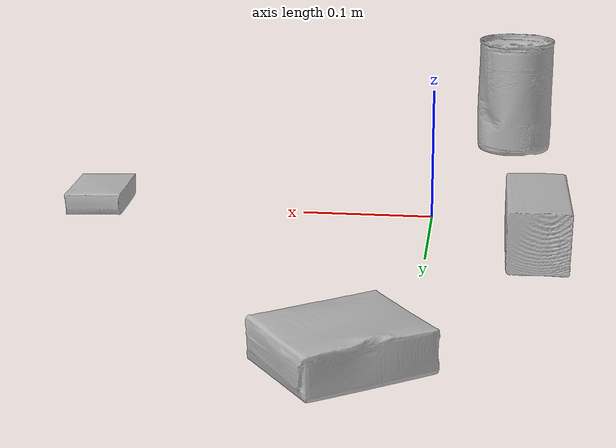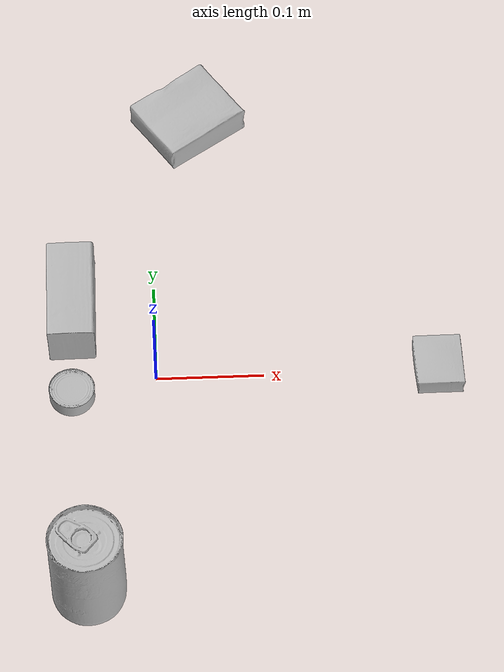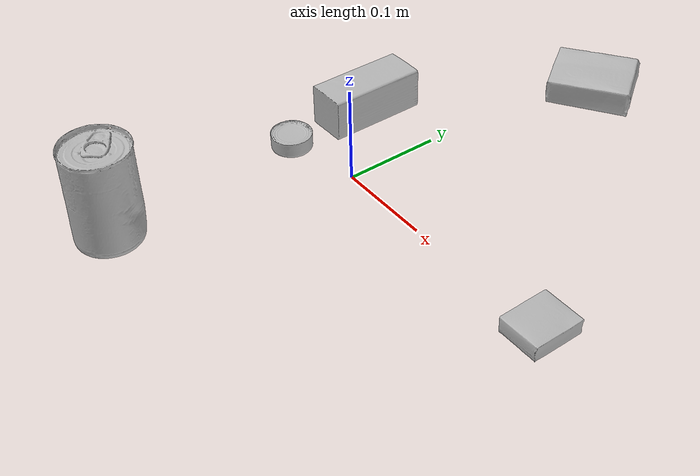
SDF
<sdf version="1.4">
  <world name="default">
    <light name="light1" type="point">
      <pose>0 0 1 0 0 0</pose>
      <diffuse>3 3 3 1</diffuse>
      <specular>3 3 3 1</specular>
    </light>
    <light name="light2" type="point">
      <pose>0 0.5 2 0 0 0</pose>
      <diffuse>1 1 1 1</diffuse>
      <specular>1 1 1 1</specular>
    </light>
    <light name="light3" type="point">
      <pose>0 0.5 2 0 0 0</pose>
      <diffuse>3 3 3 1</diffuse>
      <specular>3 3 3 1</specular>
    </light>
    <scene>
      <ambient>0.7 0.7 0.7</ambient>
    </scene>
    <model name="box1">
      <link name="link_box1">
        <collision name="default">
          <geometry>
            <mesh>
              <uri>model://pudding_box/collision_meshes/collision.obj</uri>
              <scale>0.5 0.5 0.5</scale>
            </mesh>
          </geometry>
          <surface>
            <friction>
              <ode>
                <mu>0.5</mu>
                <mu2>0.5</mu2>
              </ode>
            </friction>
          <contact>
        <ode>
            <max_vel>0</max_vel>
            <min_depth>0.0001</min_depth>
            <kp>1e8</kp>
        </ode>
    </contact></surface>
        </collision>
        <visual name="default">
          <geometry>
            <mesh>
              <uri>model://pudding_box/visual_meshes/visual.dae</uri>
              <scale>0.5 0.5 0.5</scale>
            </mesh>
          </geometry>
        </visual>
        <inertial>
          <mass>0.049221161752939224</mass>
          <pose>0.00024474109522998333 0.00040339428232982755 -0.0002594413817860186 0.005213101772454675 -0.006603800120423707 0.020079827019105066</pose>
          <inertia>
            <ixx>1.3910499e-05</ixx>
            <iyy>9.3590825e-06</iyy>
            <izz>2.0542482e-05</izz>
            <ixy>0</ixy>
            <ixz>0</ixz>
            <iyz>0</iyz>
          </inertia>
        </inertial>
      </link>
      <pose>0.2629072070121765 0.0003094077983405441 0.009862902574241161 0.022348491697438327 -0.011391787529978907 -3.120855784699793</pose>
    </model>
    <model name="box2">
      <link name="link_box2">
        <collision name="default">
          <geometry>
            <mesh>
              <uri>model://gelatin_box/collision_meshes/collision.obj</uri>
              <scale>1.0 1.0 1.0</scale>
            </mesh>
          </geometry>
          <surface>
            <friction>
              <ode>
                <mu>0.5</mu>
                <mu2>0.5</mu2>
              </ode>
            </friction>
          <contact>
        <ode>
            <max_vel>0</max_vel>
            <min_depth>0.0001</min_depth>
            <kp>1e8</kp>
        </ode>
    </contact></surface>
        </collision>
        <visual name="default">
          <geometry>
            <mesh>
              <uri>model://gelatin_box/visual_meshes/visual.dae</uri>
              <scale>1.0 1.0 1.0</scale>
            </mesh>
          </geometry>
        </visual>
        <inertial>
          <mass>0.1975366622209549</mass>
          <pose>0.000431961816502735 0.00011156871187267825 -0.00036403207923285663 -0.0010503719683328595 -0.0047558182256164224 0.016440557608480007</pose>
          <inertia>
            <ixx>0.00013944478</ixx>
            <iyy>9.960467e-05</iyy>
            <izz>0.00021226601</izz>
            <ixy>0</ixy>
            <ixz>0</ixz>
            <iyz>0</iyz>
          </inertia>
        </inertial>
      </link>
      <pose>0.03787477687001228 0.29310134053230286 0.01516831386834383 0.005596530605215898 -0.007303517552655425 2.1686468835026576</pose>
    </model>
    <model name="box3">
      <link name="link_box3">
        <collision name="default">
          <geometry>
            <mesh>
              <uri>model://wood_block/collision_meshes/collision.obj</uri>
              <scale>0.5 0.5 0.5</scale>
            </mesh>
          </geometry>
          <surface>
            <friction>
              <ode>
                <mu>0.5</mu>
                <mu2>0.5</mu2>
              </ode>
            </friction>
          <contact>
        <ode>
            <max_vel>0</max_vel>
            <min_depth>0.0001</min_depth>
            <kp>1e8</kp>
        </ode>
    </contact></surface>
        </collision>
        <visual name="default">
          <geometry>
            <mesh>
              <uri>model://wood_block/visual_meshes/visual.dae</uri>
              <scale>0.5 0.5 0.5</scale>
            </mesh>
          </geometry>
        </visual>
        <inertial>
          <mass>0.2799808979034424</mass>
          <pose>-2.9066577553749084e-06 -0.000285404734313488 0.00013204291462898254 -0.05220811074253327 -0.005192695744074178 -0.0068613776969266935</pose>
          <inertia>
            <ixx>9.3664195e-05</ixx>
            <iyy>0.0002958853</iyy>
            <izz>0.00029477844</izz>
            <ixy>0</ixy>
            <ixz>0</ixz>
            <iyz>0</iyz>
          </inertia>
        </inertial>
      </link>
      <pose>-0.07787725329399109 0.07635137438774109 0.02262926660478115 -0.0052086066787141025 0.005718784426655394 1.5740395538476188</pose>
    </model>
    <model name="can1">
      <link name="link_can1">
        <collision name="default">
          <geometry>
            <mesh>
              <uri>model://tomato_soup_can/collision_meshes/collision.obj</uri>
              <scale>1.0 1.0 1.0</scale>
            </mesh>
          </geometry>
          <surface>
            <friction>
              <ode>
                <mu>0.5</mu>
                <mu2>0.5</mu2>
              </ode>
            </friction>
          <contact>
        <ode>
            <max_vel>0</max_vel>
            <min_depth>0.0001</min_depth>
            <kp>1e8</kp>
        </ode>
    </contact></surface>
        </collision>
        <visual name="default">
          <geometry>
            <mesh>
              <uri>model://tomato_soup_can/visual_meshes/visual.dae</uri>
              <scale>1.0 1.0 1.0</scale>
            </mesh>
          </geometry>
        </visual>
        <inertial>
          <mass>0.35683923959732056</mass>
          <pose>0.00012652271834667772 0.00010805513738887385 -0.0017973982030525804 0.007020067402313596 0.00042299257688944205 -0.009903281374499336</pose>
          <inertia>
            <ixx>0.0003912439</ixx>
            <iyy>0.00038898273</iyy>
            <izz>0.00020277809</izz>
            <ixy>0</ixy>
            <ixz>0</ixz>
            <iyz>0</iyz>
          </inertia>
        </inertial>
      </link>
      <pose>-0.06552531570196152 -0.2247963547706604 0.051274001598358154 -4.397151146839922e-07 -7.431520884432443e-07 -2.551342772652785</pose>
    </model>
    <model name="can2">
      <link name="link_can2">
        <collision name="default">
          <geometry>
            <mesh>
              <uri>model://tuna_fish_can/collision_meshes/collision.obj</uri>
              <scale>0.5 0.5 0.5</scale>
            </mesh>
          </geometry>
          <surface>
            <friction>
              <ode>
                <mu>0.5</mu>
                <mu2>0.5</mu2>
              </ode>
            </friction>
          <contact>
        <ode>
            <max_vel>0</max_vel>
            <min_depth>0.0001</min_depth>
            <kp>1e8</kp>
        </ode>
    </contact></surface>
        </collision>
        <visual name="default">
          <geometry>
            <mesh>
              <uri>model://tuna_fish_can/visual_meshes/visual.dae</uri>
              <scale>0.5 0.5 0.5</scale>
            </mesh>
          </geometry>
        </visual>
        <inertial>
          <mass>0.011508840136229992</mass>
          <pose>-2.0362092982395552e-05 -7.256176559167216e-06 -0.0005269026150926948 -0.0017944756095399476 0.0001716207335623094 0.24053890436657652</pose>
          <inertia>
            <ixx>1.5560124e-06</ixx>
            <iyy>1.5495272e-06</iyy>
            <izz>2.662559e-06</izz>
            <ixy>0</ixy>
            <ixz>0</ixz>
            <iyz>0</iyz>
          </inertia>
        </inertial>
      </link>
      <pose>-0.07845059782266617 -0.017195742577314377 0.008519998751580715 -3.59721801313466e-08 -8.426286845442736e-09 -0.027505230089412164</pose>
    </model>
  <physics type="ode">
      <max_contacts>50</max_contacts>
      <ode>
        <solver>
          <type>quick</type>
          <iters>75</iters>
        </solver>
        <constraints>
          <contact_max_correcting_vel>0</contact_max_correcting_vel>
          <contact_surface_layer>0</contact_surface_layer>
        </constraints>
      </ode>
    </physics></world>
</sdf>
